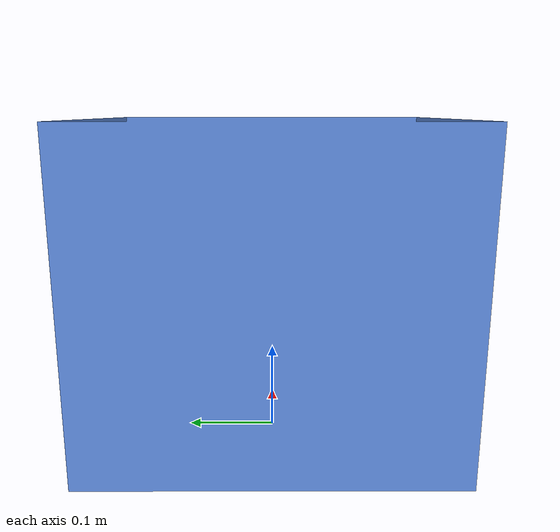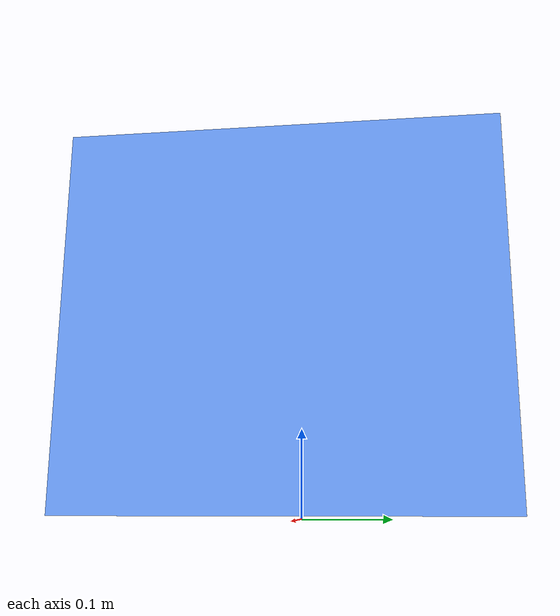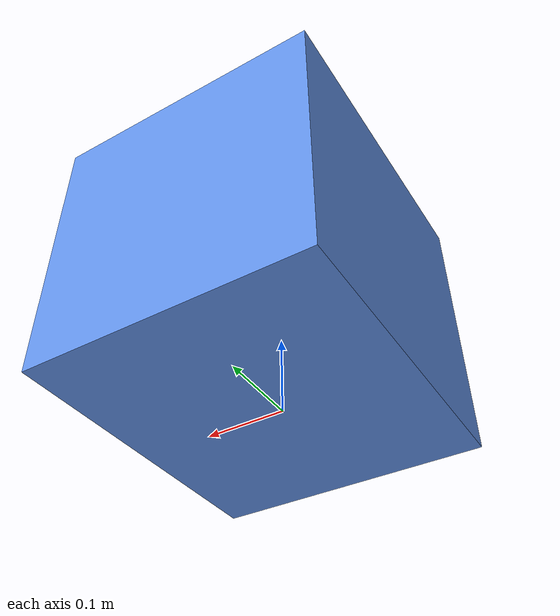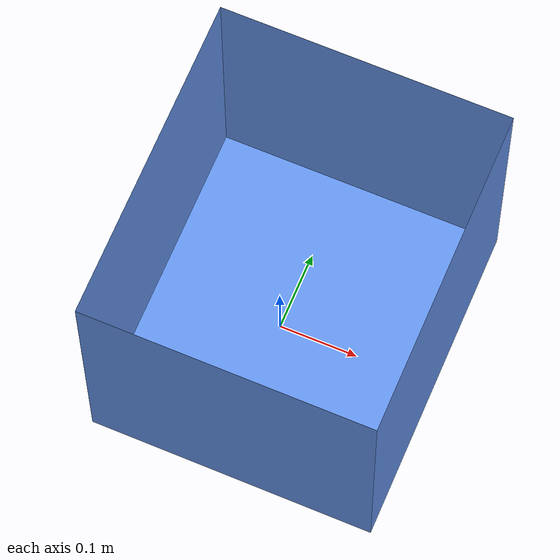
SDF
<?xml version="1.0" ?>
<sdf version="1.4">
  <model name="PnPBox">
        <static> false </static>
        <link name="box_link">
            <collision name="box_collision">
                <geometry>
                    <box>
                        <size> 0.4 0.4 0.01 </size>
                    </box>
                </geometry>
            </collision>
            <visual name="box_mesh">
                <cast_shadows> true </cast_shadows>
                <geometry>
                    <mesh>
                        <uri>model://PnPBox/box.dae</uri>
                    </mesh>
                </geometry>
            </visual>
        </link>
  </model>
</sdf>
